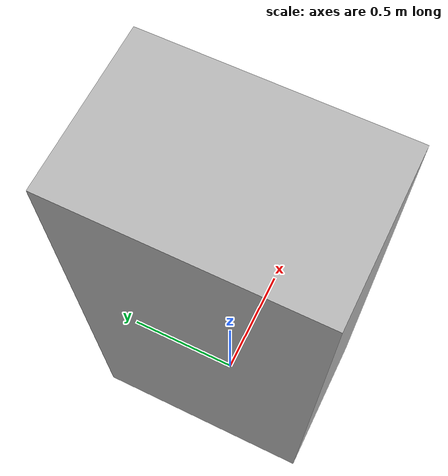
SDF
<?xml version="1.0"?>

<sdf version="1.6">
  <model name='VendingMachine'>
    <link name="body">
      <pose>0 0 0 0 0 0</pose>

      <visual name="visual">
        <geometry>
          <mesh>
            <uri>model://VendingMachine/meshes/VendingMachine.obj</uri>
          </mesh>
        </geometry>
      </visual>

      <collision name="collision">
        <geometry>
          <mesh>
            <uri>model://VendingMachine/meshes/VendingMachine.obj</uri>
          </mesh>
        </geometry>
      </collision>

    </link>
  </model>
</sdf>
